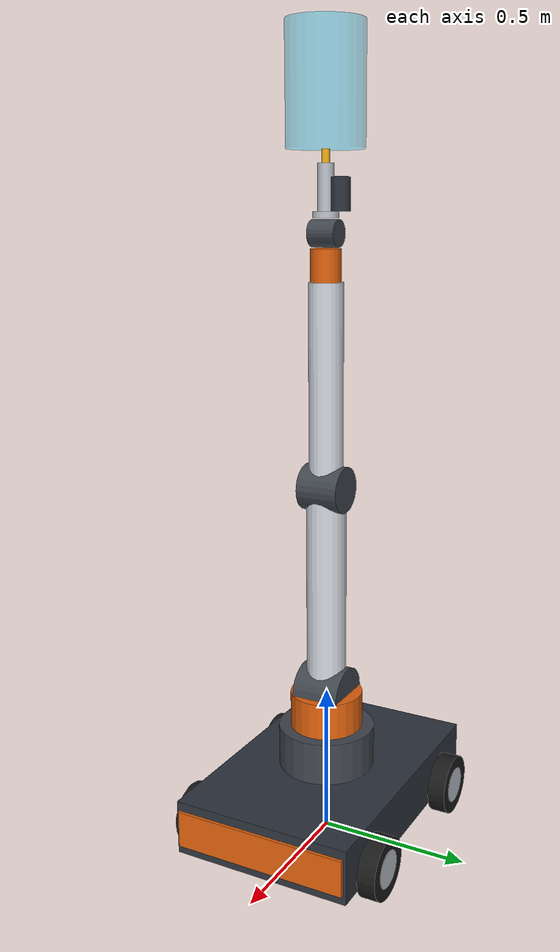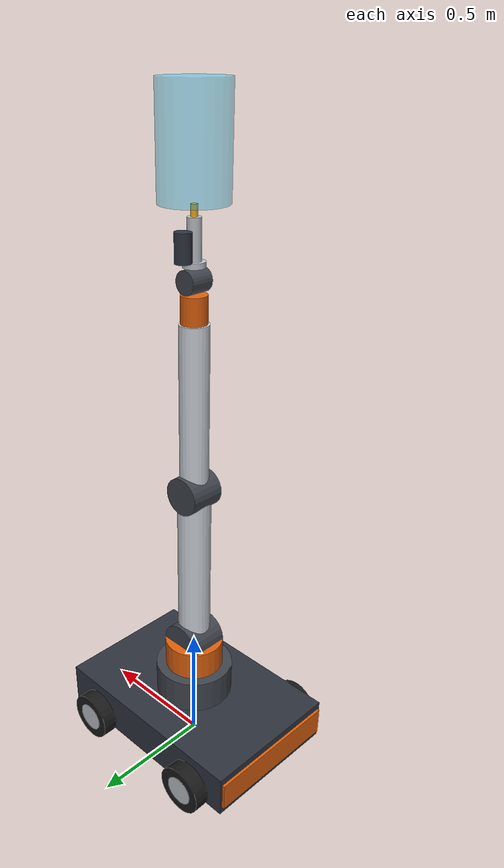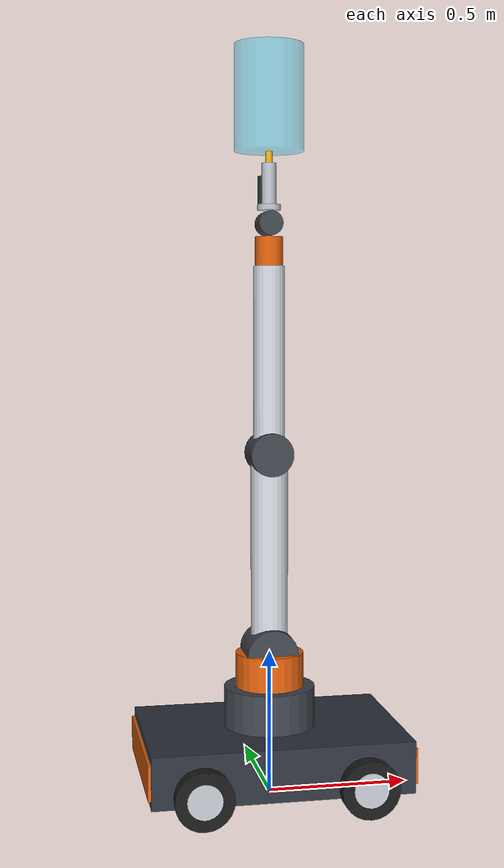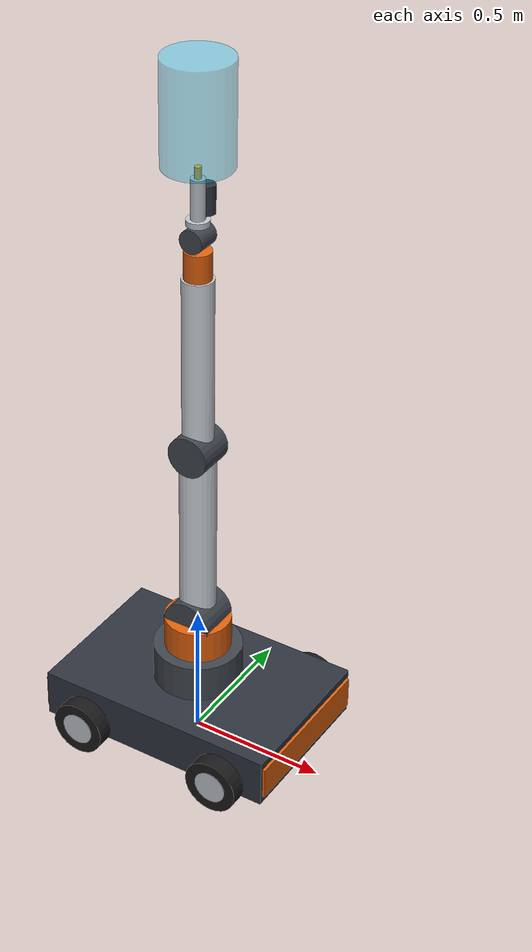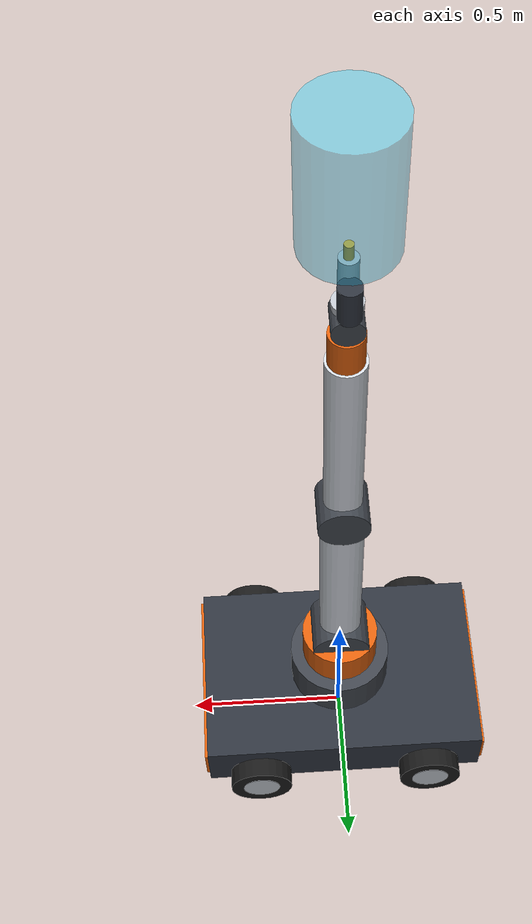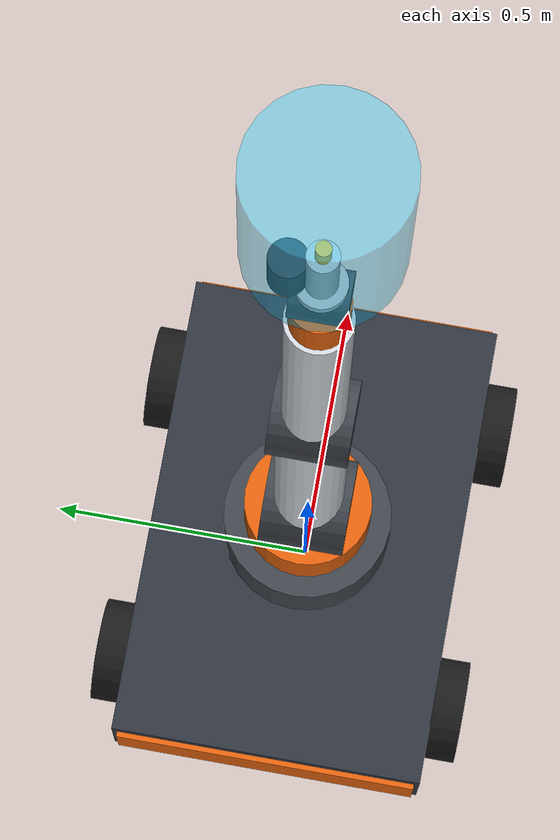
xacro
<?xml version="1.0"?>
<robot name="mobile_painting_robot" xmlns:xacro="http://www.ros.org/wiki/xacro">

  <!-- Include modular components -->
  <xacro:include filename="materials.xacro"/>
  <xacro:include filename="mobile_base.xacro"/>
  <xacro:include filename="arm_and_gun.xacro"/>
  <xacro:include filename="gazebo_plugins.xacro"/>

  <!-- Instantiate Mobile Base -->
  <xacro:mobile_base/>

  <!-- Instantiate Articulated Arm & Spray Gun -->
  <xacro:painting_arm/>

  <!-- Instantiate Gazebo Plugins -->
  <xacro:gazebo_control_plugins/>

</robot>

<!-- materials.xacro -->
<robot xmlns:xacro="http://www.ros.org/wiki/xacro">

  <!-- Industrial Robotics Color Palette -->
  <material name="industrial_orange">
    <color rgba="0.88 0.38 0.05 1.0"/>
  </material>

  <material name="chassis_dark_gray">
    <color rgba="0.18 0.20 0.24 1.0"/>
  </material>

  <material name="arm_light_gray">
    <color rgba="0.82 0.84 0.87 1.0"/>
  </material>

  <material name="joint_dark">
    <color rgba="0.25 0.27 0.30 1.0"/>
  </material>

  <material name="rubber_black">
    <color rgba="0.10 0.10 0.10 1.0"/>
  </material>

  <material name="metallic_silver">
    <color rgba="0.75 0.77 0.80 1.0"/>
  </material>

  <material name="nozzle_gold">
    <color rgba="0.95 0.70 0.10 1.0"/>
  </material>

  <material name="spray_cone_cyan">
    <color rgba="0.10 0.80 1.00 0.40"/>
  </material>

</robot>

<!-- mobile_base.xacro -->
<robot xmlns:xacro="http://www.ros.org/wiki/xacro">

  <!-- Mobile Base Macro -->
  <xacro:macro name="mobile_base">

    <!-- Base Footprint (Ground projection) -->
    <link name="base_footprint"/>

    <joint name="base_footprint_joint" type="fixed">
      <parent link="base_footprint"/>
      <child link="base_link"/>
      <origin xyz="0 0 0.10" rpy="0 0 0"/>
    </joint>

    <!-- Main Chassis Link -->
    <link name="base_link">
      <inertial>
        <origin xyz="0 0 0.04" rpy="0 0 0"/>
        <mass value="50.0"/>
        <inertia ixx="1.635" ixy="0.0" ixz="0.0" iyy="3.510" iyz="0.0" izz="4.875"/>
      </inertial>

      <!-- Chassis Body -->
      <visual>
        <origin xyz="0 0 0.05" rpy="0 0 0"/>
        <geometry>
          <box size="0.90 0.60 0.18"/>
        </geometry>
        <material name="chassis_dark_gray"/>
      </visual>
      <collision>
        <origin xyz="0 0 0.05" rpy="0 0 0"/>
        <geometry>
          <box size="0.90 0.60 0.18"/>
        </geometry>
      </collision>

      <!-- Protective Bumper Trim -->
      <visual>
        <origin xyz="0.44 0 0.05" rpy="0 0 0"/>
        <geometry>
          <box size="0.04 0.58 0.12"/>
        </geometry>
        <material name="industrial_orange"/>
      </visual>
      <visual>
        <origin xyz="-0.44 0 0.05" rpy="0 0 0"/>
        <geometry>
          <box size="0.04 0.58 0.12"/>
        </geometry>
        <material name="industrial_orange"/>
      </visual>

      <!-- Arm Mounting Pedestal Support Platform -->
      <visual>
        <origin xyz="0 0 0.21" rpy="0 0 0"/>
        <geometry>
          <cylinder radius="0.16" length="0.14"/>
        </geometry>
        <material name="joint_dark"/>
      </visual>
      <collision>
        <origin xyz="0 0 0.21" rpy="0 0 0"/>
        <geometry>
          <cylinder radius="0.16" length="0.14"/>
        </geometry>
      </collision>
    </link>

    <!-- Wheel Macro -->
    <xacro:macro name="wheel" params="prefix x_reflect y_reflect">
      <link name="${prefix}_wheel_link">
        <inertial>
          <origin xyz="0 0 0" rpy="0 0 0"/>
          <mass value="2.5"/>
          <inertia ixx="0.007" ixy="0.0" ixz="0.0" iyy="0.0125" iyz="0.0" izz="0.007"/>
        </inertial>
        <visual>
          <origin xyz="0 0 0" rpy="${pi/2} 0 0"/>
          <geometry>
            <cylinder radius="0.10" length="0.06"/>
          </geometry>
          <material name="rubber_black"/>
        </visual>
        <visual>
          <origin xyz="0 0 0" rpy="${pi/2} 0 0"/>
          <geometry>
            <cylinder radius="0.06" length="0.062"/>
          </geometry>
          <material name="metallic_silver"/>
        </visual>
        <collision>
          <origin xyz="0 0 0" rpy="${pi/2} 0 0"/>
          <geometry>
            <cylinder radius="0.10" length="0.06"/>
          </geometry>
        </collision>
      </link>

      <joint name="${prefix}_wheel_joint" type="continuous">
        <parent link="base_link"/>
        <child link="${prefix}_wheel_link"/>
        <origin xyz="${x_reflect * 0.28} ${y_reflect * 0.33} 0.0" rpy="0 0 0"/>
        <axis xyz="0 1 0"/>
        <dynamics damping="0.1" friction="0.1"/>
      </joint>

      <gazebo reference="${prefix}_wheel_link">
        <mu1>1.0</mu1>
        <mu2>0.1</mu2>
        <fdir1>1 0 0</fdir1>
        <kp>1000000.0</kp>
        <kd>100.0</kd>
        <minDepth>0.001</minDepth>
        <material>Gazebo/FlatBlack</material>
      </gazebo>
    </xacro:macro>

    <!-- Instantiate 4 Wheels -->
    <xacro:wheel prefix="front_left"  x_reflect="1"  y_reflect="1"/>
    <xacro:wheel prefix="front_right" x_reflect="1"  y_reflect="-1"/>
    <xacro:wheel prefix="rear_left"   x_reflect="-1" y_reflect="1"/>
    <xacro:wheel prefix="rear_right"  x_reflect="-1" y_reflect="-1"/>

    <gazebo reference="base_link">
      <material>Gazebo/DarkGrey</material>
    </gazebo>

  </xacro:macro>

</robot>

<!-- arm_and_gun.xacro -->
<robot xmlns:xacro="http://www.ros.org/wiki/xacro">

  <!-- Articulated 6-Axis Arm and Spray Gun End-Effector Macro -->
  <xacro:macro name="painting_arm">

    <!-- ==================== JOINT 1: ARM BASE (WAIST PAN) ==================== -->
    <link name="arm_base_link">
      <inertial>
        <origin xyz="0 0 0.06" rpy="0 0 0"/>
        <mass value="5.0"/>
        <inertia ixx="0.04" ixy="0.0" ixz="0.0" iyy="0.04" iyz="0.0" izz="0.05"/>
      </inertial>
      <visual>
        <origin xyz="0 0 0.06" rpy="0 0 0"/>
        <geometry>
          <cylinder radius="0.12" length="0.12"/>
        </geometry>
        <material name="industrial_orange"/>
      </visual>
      <collision>
        <origin xyz="0 0 0.06" rpy="0 0 0"/>
        <geometry>
          <cylinder radius="0.12" length="0.12"/>
        </geometry>
      </collision>
    </link>

    <joint name="arm_base_joint" type="revolute">
      <parent link="base_link"/>
      <child link="arm_base_link"/>
      <origin xyz="0 0 0.28" rpy="0 0 0"/>
      <axis xyz="0 0 1"/>
      <limit lower="-3.14159" upper="3.14159" effort="150.0" velocity="2.0"/>
      <dynamics damping="5.0" friction="2.0"/>
    </joint>

    <!-- ==================== JOINT 2: SHOULDER (PITCH) ==================== -->
    <link name="upper_arm_link">
      <inertial>
        <origin xyz="0 0 0.35" rpy="0 0 0"/>
        <mass value="3.2"/>
        <inertia ixx="0.12" ixy="0.0" ixz="0.0" iyy="0.12" iyz="0.0" izz="0.015"/>
      </inertial>
      <!-- Shoulder Pivot Knuckle -->
      <visual>
        <origin xyz="0 0 0" rpy="${pi/2} 0 0"/>
        <geometry>
          <cylinder radius="0.09" length="0.16"/>
        </geometry>
        <material name="joint_dark"/>
      </visual>
      <collision>
        <origin xyz="0 0 0" rpy="${pi/2} 0 0"/>
        <geometry>
          <cylinder radius="0.09" length="0.16"/>
        </geometry>
      </collision>
      <!-- Arm Cylinder -->
      <visual>
        <origin xyz="0 0 0.35" rpy="0 0 0"/>
        <geometry>
          <cylinder radius="0.065" length="0.70"/>
        </geometry>
        <material name="arm_light_gray"/>
      </visual>
      <collision>
        <origin xyz="0 0 0.35" rpy="0 0 0"/>
        <geometry>
          <cylinder radius="0.065" length="0.70"/>
        </geometry>
      </collision>
    </link>

    <joint name="shoulder_joint" type="revolute">
      <parent link="arm_base_link"/>
      <child link="upper_arm_link"/>
      <origin xyz="0 0 0.12" rpy="0 0 0"/>
      <axis xyz="0 1 0"/>
      <limit lower="-1.80" upper="1.80" effort="200.0" velocity="1.8"/>
      <dynamics damping="25.0" friction="18.0"/>
    </joint>

    <!-- ==================== JOINT 3: ELBOW (PITCH) ==================== -->
    <link name="forearm_link">
      <inertial>
        <origin xyz="0 0 0.325" rpy="0 0 0"/>
        <mass value="2.0"/>
        <inertia ixx="0.06" ixy="0.0" ixz="0.0" iyy="0.06" iyz="0.0" izz="0.008"/>
      </inertial>
      <!-- Elbow Knuckle -->
      <visual>
        <origin xyz="0 0 0" rpy="${pi/2} 0 0"/>
        <geometry>
          <cylinder radius="0.075" length="0.14"/>
        </geometry>
        <material name="joint_dark"/>
      </visual>
      <collision>
        <origin xyz="0 0 0" rpy="${pi/2} 0 0"/>
        <geometry>
          <cylinder radius="0.075" length="0.14"/>
        </geometry>
      </collision>
      <!-- Forearm Tube -->
      <visual>
        <origin xyz="0 0 0.325" rpy="0 0 0"/>
        <geometry>
          <cylinder radius="0.055" length="0.65"/>
        </geometry>
        <material name="arm_light_gray"/>
      </visual>
      <collision>
        <origin xyz="0 0 0.325" rpy="0 0 0"/>
        <geometry>
          <cylinder radius="0.055" length="0.65"/>
        </geometry>
      </collision>
    </link>

    <joint name="elbow_joint" type="revolute">
      <parent link="upper_arm_link"/>
      <child link="forearm_link"/>
      <origin xyz="0 0 0.70" rpy="0 0 0"/>
      <axis xyz="0 1 0"/>
      <limit lower="-2.50" upper="2.50" effort="150.0" velocity="2.0"/>
      <dynamics damping="20.0" friction="14.0"/>
    </joint>

    <!-- ==================== JOINT 4: WRIST 1 (ROLL / YAW) ==================== -->
    <link name="wrist_1_link">
      <inertial>
        <origin xyz="0 0 0.05" rpy="0 0 0"/>
        <mass value="1.0"/>
        <inertia ixx="0.005" ixy="0.0" ixz="0.0" iyy="0.005" iyz="0.0" izz="0.004"/>
      </inertial>
      <visual>
        <origin xyz="0 0 0.05" rpy="0 0 0"/>
        <geometry>
          <cylinder radius="0.048" length="0.10"/>
        </geometry>
        <material name="industrial_orange"/>
      </visual>
      <collision>
        <origin xyz="0 0 0.05" rpy="0 0 0"/>
        <geometry>
          <cylinder radius="0.048" length="0.10"/>
        </geometry>
      </collision>
    </link>

    <joint name="wrist_1_joint" type="revolute">
      <parent link="forearm_link"/>
      <child link="wrist_1_link"/>
      <origin xyz="0 0 0.65" rpy="0 0 0"/>
      <axis xyz="0 0 1"/>
      <limit lower="-3.14159" upper="3.14159" effort="50.0" velocity="2.5"/>
      <dynamics damping="5.0" friction="2.0"/>
    </joint>

    <!-- ==================== JOINT 5: WRIST 2 (BEND / PITCH) ==================== -->
    <link name="wrist_2_link">
      <inertial>
        <origin xyz="0 0 0.045" rpy="0 0 0"/>
        <mass value="0.8"/>
        <inertia ixx="0.003" ixy="0.0" ixz="0.0" iyy="0.003" iyz="0.0" izz="0.002"/>
      </inertial>
      <visual>
        <origin xyz="0 0 0.045" rpy="${pi/2} 0 0"/>
        <geometry>
          <cylinder radius="0.042" length="0.09"/>
        </geometry>
        <material name="joint_dark"/>
      </visual>
      <collision>
        <origin xyz="0 0 0.045" rpy="${pi/2} 0 0"/>
        <geometry>
          <cylinder radius="0.042" length="0.09"/>
        </geometry>
      </collision>
    </link>

    <joint name="wrist_2_joint" type="revolute">
      <parent link="wrist_1_link"/>
      <child link="wrist_2_link"/>
      <origin xyz="0 0 0.10" rpy="0 0 0"/>
      <axis xyz="0 1 0"/>
      <limit lower="-2.00" upper="2.00" effort="40.0" velocity="2.5"/>
      <dynamics damping="10.0" friction="6.0"/>
    </joint>

    <!-- ==================== JOINT 6: WRIST 3 (TOOL FLANGE ROLL) ==================== -->
    <link name="tool_flange_link">
      <inertial>
        <origin xyz="0 0 0.01" rpy="0 0 0"/>
        <mass value="0.4"/>
        <inertia ixx="0.001" ixy="0.0" ixz="0.0" iyy="0.001" iyz="0.0" izz="0.001"/>
      </inertial>
      <visual>
        <origin xyz="0 0 0.01" rpy="0 0 0"/>
        <geometry>
          <cylinder radius="0.040" length="0.02"/>
        </geometry>
        <material name="metallic_silver"/>
      </visual>
      <collision>
        <origin xyz="0 0 0.01" rpy="0 0 0"/>
        <geometry>
          <cylinder radius="0.040" length="0.02"/>
        </geometry>
      </collision>
    </link>

    <joint name="wrist_3_joint" type="revolute">
      <parent link="wrist_2_link"/>
      <child link="tool_flange_link"/>
      <origin xyz="0 0 0.09" rpy="0 0 0"/>
      <axis xyz="0 0 1"/>
      <limit lower="-3.14159" upper="3.14159" effort="30.0" velocity="3.0"/>
      <dynamics damping="3.0" friction="1.5"/>
    </joint>

    <!-- ==================== END-EFFECTOR: SPRAY GUN ASSEMBLY ==================== -->
    <!-- Modular spray gun assembly bolted to the tool flange -->
    <link name="spray_gun_link">
      <inertial>
        <origin xyz="0 0 0.07" rpy="0 0 0"/>
        <mass value="0.6"/>
        <inertia ixx="0.002" ixy="0.0" ixz="0.0" iyy="0.002" iyz="0.0" izz="0.001"/>
      </inertial>
      <!-- Gun Body Cylinder -->
      <visual>
        <origin xyz="0 0 0.07" rpy="0 0 0"/>
        <geometry>
          <cylinder radius="0.025" length="0.14"/>
        </geometry>
        <material name="metallic_silver"/>
      </visual>
      <collision>
        <origin xyz="0 0 0.07" rpy="0 0 0"/>
        <geometry>
          <cylinder radius="0.025" length="0.14"/>
        </geometry>
      </collision>
      <!-- Fluid Paint Canister / Hose Manifold -->
      <visual>
        <origin xyz="0 0.05 0.05" rpy="0 0 0"/>
        <geometry>
          <cylinder radius="0.03" length="0.10"/>
        </geometry>
        <material name="chassis_dark_gray"/>
      </visual>
      <collision>
        <origin xyz="0 0.05 0.05" rpy="0 0 0"/>
        <geometry>
          <cylinder radius="0.03" length="0.10"/>
        </geometry>
      </collision>
    </link>

    <joint name="spray_gun_joint" type="fixed">
      <parent link="tool_flange_link"/>
      <child link="spray_gun_link"/>
      <origin xyz="0 0 0.02" rpy="0 0 0"/>
    </joint>

    <!-- ==================== SPRAY NOZZLE ==================== -->
    <link name="nozzle_link">
      <inertial>
        <origin xyz="0 0 0.02" rpy="0 0 0"/>
        <mass value="0.15"/>
        <inertia ixx="0.0001" ixy="0.0" ixz="0.0" iyy="0.0001" iyz="0.0" izz="0.0001"/>
      </inertial>
      <!-- Precision Brass Atomizer Nozzle Tip -->
      <visual>
        <origin xyz="0 0 0.02" rpy="0 0 0"/>
        <geometry>
          <cylinder radius="0.012" length="0.04"/>
        </geometry>
        <material name="nozzle_gold"/>
      </visual>
      <collision>
        <origin xyz="0 0 0.02" rpy="0 0 0"/>
        <geometry>
          <cylinder radius="0.012" length="0.04"/>
        </geometry>
      </collision>
    </link>

    <joint name="nozzle_joint" type="fixed">
      <parent link="spray_gun_link"/>
      <child link="nozzle_link"/>
      <origin xyz="0 0 0.14" rpy="0 0 0"/>
    </joint>

    <!-- ==================== SPRAY PATTERN / CONE (VISUAL ONLY) ==================== -->
    <!-- Visual atomized spray cone indicating paint application direction -->
    <link name="spray_cone_link">
      <inertial>
        <origin xyz="0 0 0.18" rpy="0 0 0"/>
        <mass value="0.001"/>
        <inertia ixx="0.00001" ixy="0.0" ixz="0.0" iyy="0.00001" iyz="0.0" izz="0.00001"/>
      </inertial>
      <visual>
        <origin xyz="0 0 0.18" rpy="0 0 0"/>
        <geometry>
          <!-- Expanding spray cone representation: length 0.36m, radius 0.14m -->
          <cylinder radius="0.12" length="0.36"/>
        </geometry>
        <material name="spray_cone_cyan"/>
      </visual>
    </link>

    <joint name="spray_cone_joint" type="prismatic">
      <parent link="nozzle_link"/>
      <child link="spray_cone_link"/>
      <origin xyz="0 0 0.04" rpy="0 0 0"/>
      <axis xyz="0 0 1"/>
      <limit lower="-1.5" upper="0.05" effort="10.0" velocity="5.0"/>
      <dynamics damping="0.01" friction="0.0"/>
    </joint>

    <!-- Gazebo Material Colors for Arm Links -->
    <gazebo reference="arm_base_link">
      <material>Gazebo/Orange</material>
    </gazebo>
    <gazebo reference="upper_arm_link">
      <material>Gazebo/Grey</material>
    </gazebo>
    <gazebo reference="forearm_link">
      <material>Gazebo/Grey</material>
    </gazebo>
    <gazebo reference="wrist_1_link">
      <material>Gazebo/Orange</material>
    </gazebo>
    <gazebo reference="wrist_2_link">
      <material>Gazebo/DarkGrey</material>
    </gazebo>
    <gazebo reference="tool_flange_link">
      <material>Gazebo/Grey</material>
    </gazebo>
    <gazebo reference="spray_gun_link">
      <material>Gazebo/Grey</material>
    </gazebo>
    <gazebo reference="nozzle_link">
      <material>Gazebo/Gold</material>
    </gazebo>
    <gazebo reference="spray_cone_link">
      <material>Gazebo/BlueTransparent</material>
      <gravity>false</gravity>
    </gazebo>

    <!-- Implicit Spring Damper for Joint Holding Stability -->
    <gazebo reference="arm_base_joint">
      <implicitSpringDamper>true</implicitSpringDamper>
    </gazebo>
    <gazebo reference="shoulder_joint">
      <implicitSpringDamper>true</implicitSpringDamper>
    </gazebo>
    <gazebo reference="elbow_joint">
      <implicitSpringDamper>true</implicitSpringDamper>
    </gazebo>
    <gazebo reference="wrist_1_joint">
      <implicitSpringDamper>true</implicitSpringDamper>
    </gazebo>
    <gazebo reference="wrist_2_joint">
      <implicitSpringDamper>true</implicitSpringDamper>
    </gazebo>
    <gazebo reference="wrist_3_joint">
      <implicitSpringDamper>true</implicitSpringDamper>
    </gazebo>

  </xacro:macro>

</robot>
